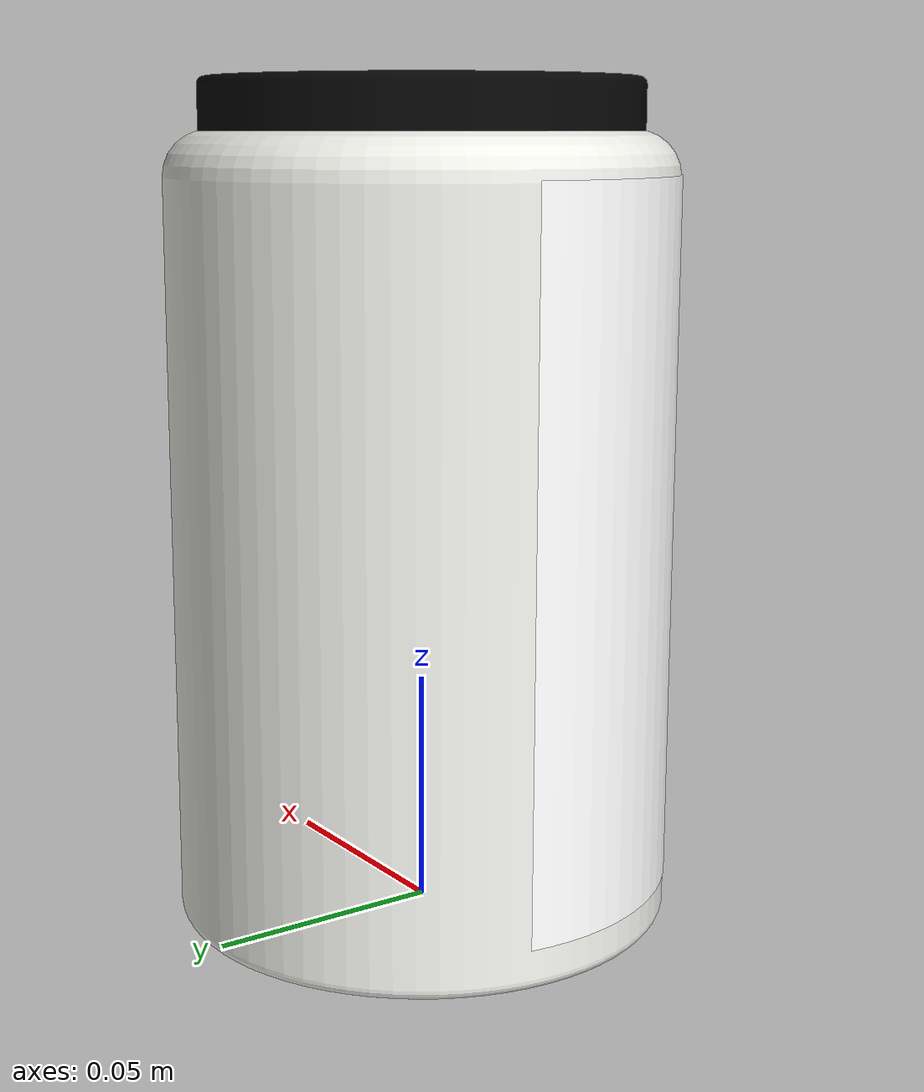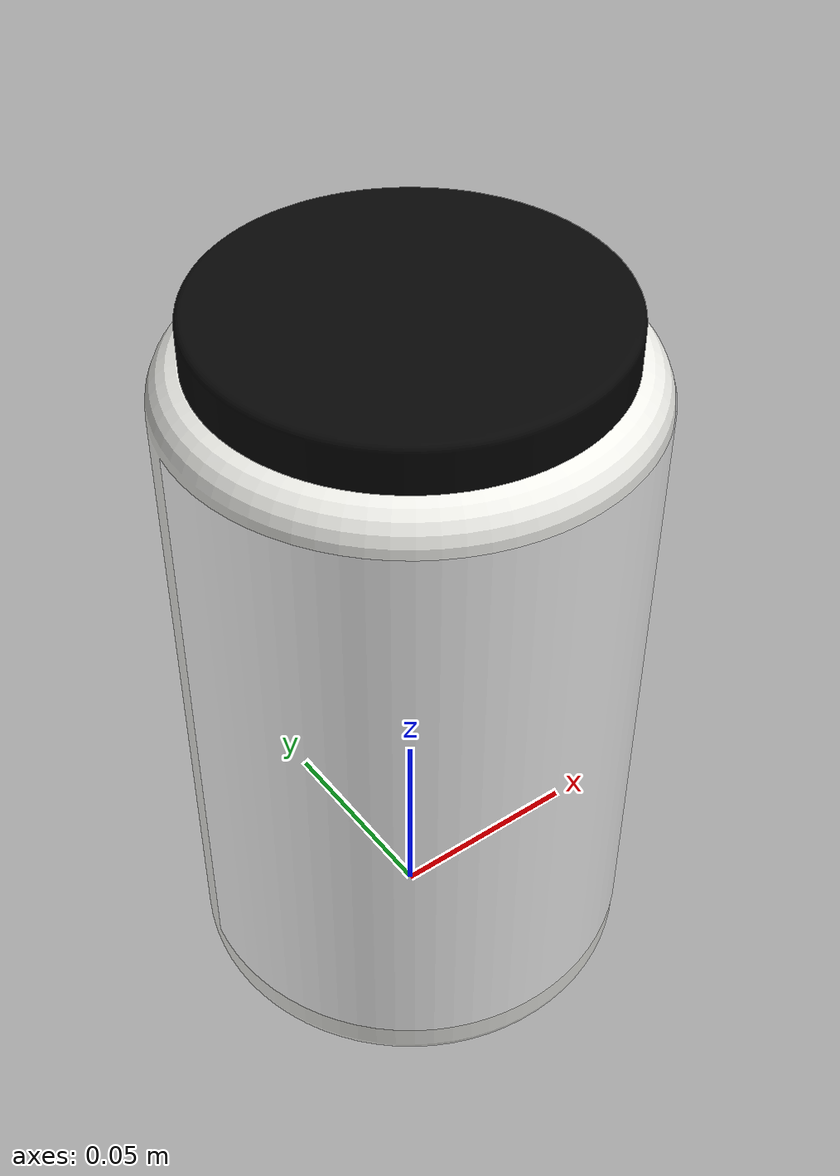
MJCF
<mujoco model="jar_1000ml">
  <asset>
    <mesh name="jar_1000ml_00" file="jar_1000ml_00.obj" inertia="exact"/>
    <mesh name="jar_1000ml_01" file="jar_1000ml_01.obj" inertia="exact"/>
    <mesh name="jar_1000ml_02" file="jar_1000ml_02.obj" inertia="exact"/>
    <mesh name="jar_1000ml_03" file="jar_1000ml_03.obj" inertia="exact"/>
  </asset>
  <worldbody>
    <body name="jar_1000ml">
      <geom type="mesh" mesh="jar_1000ml_00" rgba="0.020 0.020 0.020 1.000" density="950"/>  <!-- Cap_PP_Black -->
      <geom type="mesh" mesh="jar_1000ml_01" rgba="1.000 1.000 1.000 1.000" density="950"/>  <!-- Label_BenzoinResinoid -->
      <geom type="mesh" mesh="jar_1000ml_02" rgba="0.720 0.480 0.200 1.000" density="950"/>  <!-- Powder_BenzoinResinoid -->
      <geom type="mesh" mesh="jar_1000ml_03" rgba="0.930 0.930 0.910 1.000" density="950"/>  <!-- HDPE_White -->
    </body>
  </worldbody>
</mujoco>
